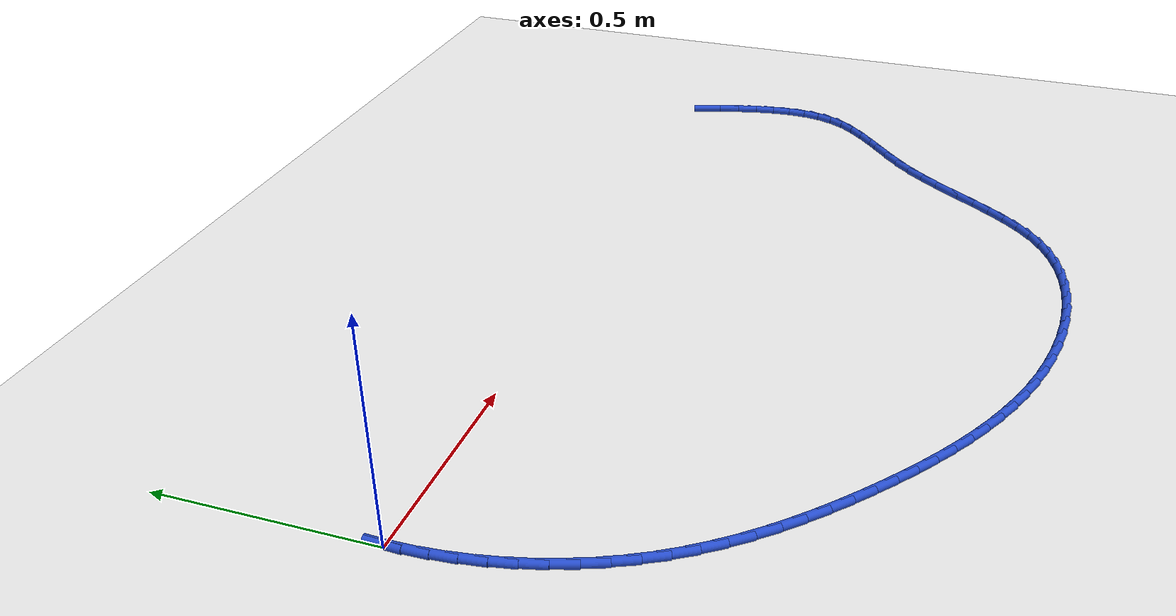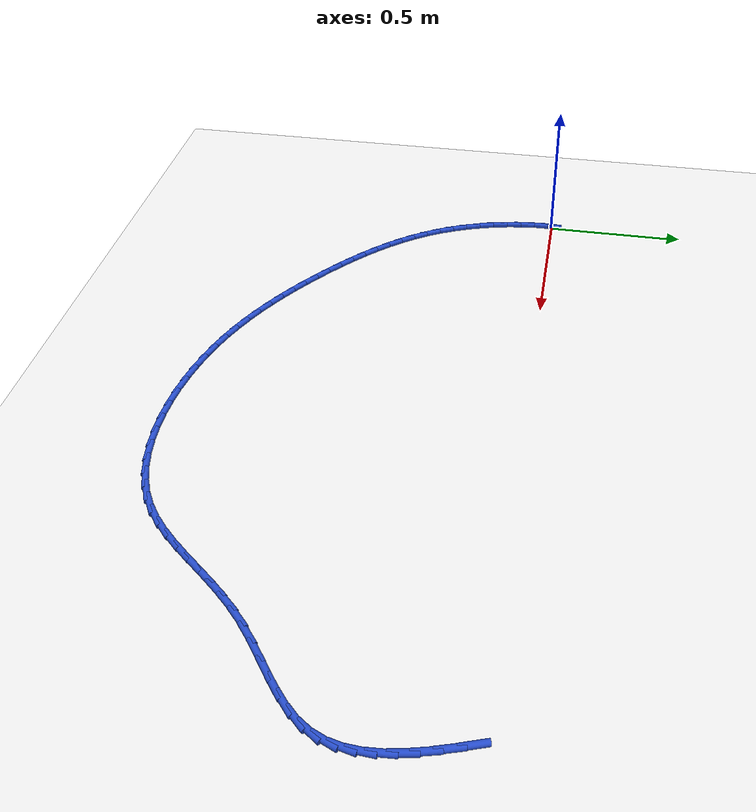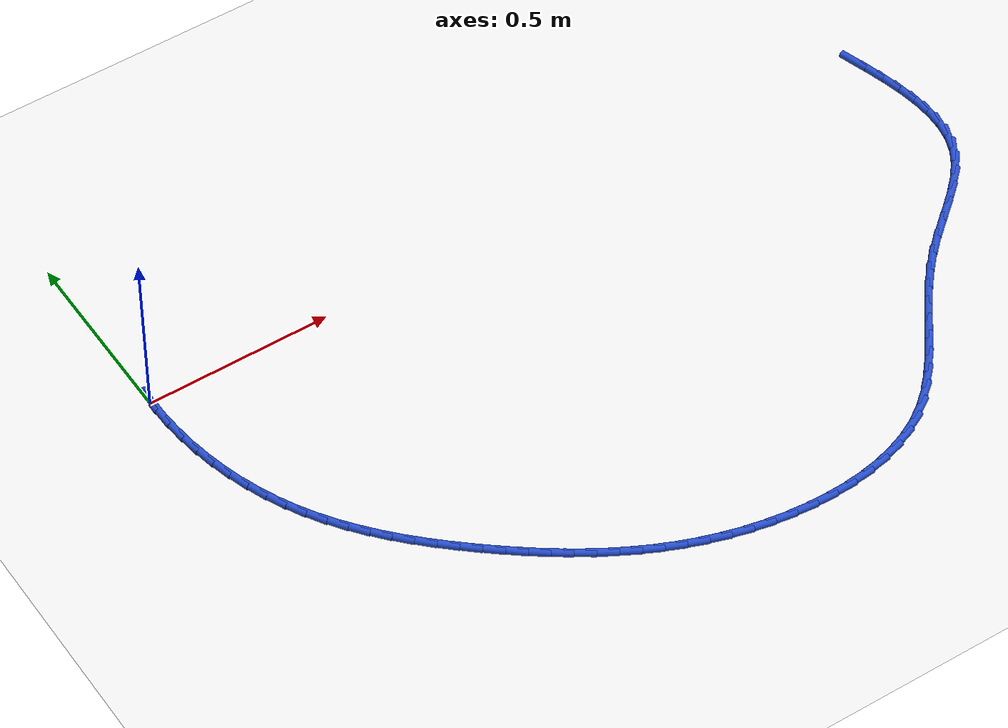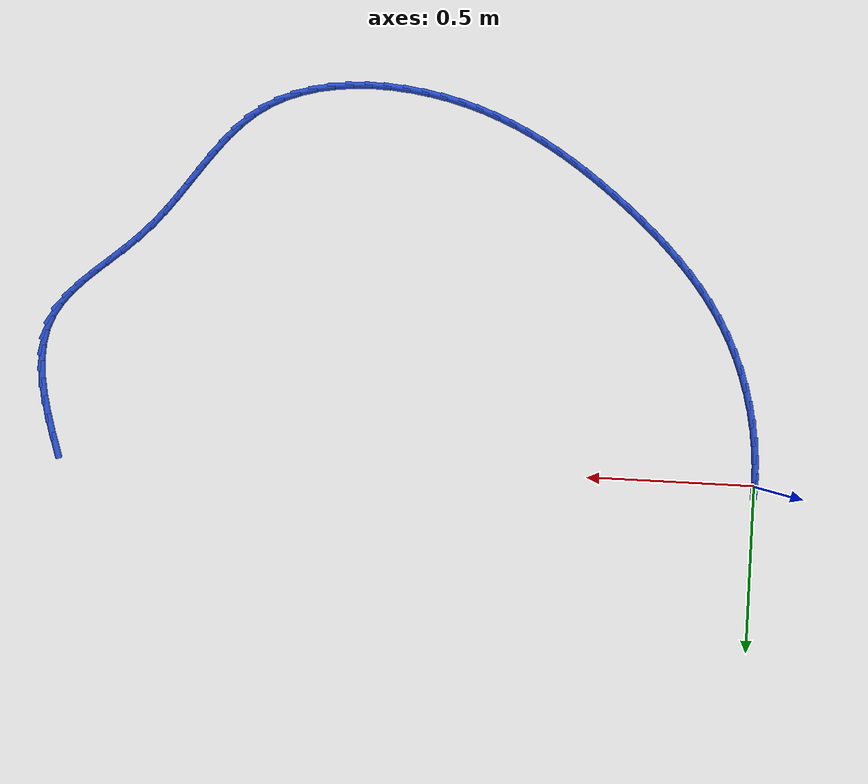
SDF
<sdf version="1.6">
 <world name="default">
  <model name="ground_plane">
   <static>1</static>
   <link name="link">
    <collision name="collision">
     <geometry><plane><normal>0 0 1</normal><size>100 100</size></plane></geometry>
     <surface><friction><ode><mu>100</mu><mu2>50</mu2></ode></friction></surface>
    </collision>
    <visual name="visual">
     <cast_shadows>0</cast_shadows>
     <geometry><plane><normal>0 0 1</normal><size>100 100</size></plane></geometry>
     <material>
      <script><uri>file://media/materials/scripts/gazebo.material</uri><name>Gazebo/WhiteGlow</name></script>
     </material>
    </visual>
   </link>
  </model>
  <model name="line">
   <link name="link_0">
    <pose>-4.163336342344337e-17 2.7755575615628914e-17 0.01 0 1.57 1.5277904556935162</pose>
    <collision name="collision">
     <geometry><cylinder><radius>0.01</radius><length>0.08</length></cylinder></geometry>
    </collision>
    <visual name="visual">
     <material>
      <script><name>Gazebo/Blue</name><uri>file://media/materials/scripts/gazebo.material</uri></script>
     </material>
     <geometry><cylinder><radius>0.01</radius><length>0.08</length></cylinder></geometry>
    </visual>
   </link>
   <link name="link_66">
    <pose>2.0867759038561684 -0.01920757033988546 0.01 0 1.57 -1.2709028024128965</pose>
    <collision name="collision">
     <geometry><cylinder><radius>0.01</radius><length>0.08</length></cylinder></geometry>
    </collision>
    <visual name="visual">
     <material>
      <script><name>Gazebo/Blue</name><uri>file://media/materials/scripts/gazebo.material</uri></script>
     </material>
     <geometry><cylinder><radius>0.01</radius><length>0.08</length></cylinder></geometry>
    </visual>
   </link>
   <link name="link_67">
    <pose>2.103664264737091 -0.07382364728153981 0.01 0 1.57 -1.3021984527120407</pose>
    <collision name="collision">
     <geometry><cylinder><radius>0.01</radius><length>0.08</length></cylinder></geometry>
    </collision>
    <visual name="visual">
     <material>
      <script><name>Gazebo/Blue</name><uri>file://media/materials/scripts/gazebo.material</uri></script>
     </material>
     <geometry><cylinder><radius>0.01</radius><length>0.08</length></cylinder></geometry>
    </visual>
   </link>
   <link name="link_68">
    <pose>2.118341625486802 -0.12714754731527922 0.01 0 1.57 -1.350473126373724</pose>
    <collision name="collision">
     <geometry><cylinder><radius>0.01</radius><length>0.08</length></cylinder></geometry>
    </collision>
    <visual name="visual">
     <material>
      <script><name>Gazebo/Blue</name><uri>file://media/materials/scripts/gazebo.material</uri></script>
     </material>
     <geometry><cylinder><radius>0.01</radius><length>0.08</length></cylinder></geometry>
    </visual>
   </link>
   <link name="link_69">
    <pose>2.1299573043709232 -0.17901279419229243 0.01 0 1.57 -1.4186512946158751</pose>
    <collision name="collision">
     <geometry><cylinder><radius>0.01</radius><length>0.08</length></cylinder></geometry>
    </collision>
    <visual name="visual">
     <material>
      <script><name>Gazebo/Blue</name><uri>file://media/materials/scripts/gazebo.material</uri></script>
     </material>
     <geometry><cylinder><radius>0.01</radius><length>0.08</length></cylinder></geometry>
    </visual>
   </link>
   <link name="link_70">
    <pose>2.1376606196550765 -0.22925291166376788 0.01 0 1.57 -1.5101821195414193</pose>
    <collision name="collision">
     <geometry><cylinder><radius>0.01</radius><length>0.08</length></cylinder></geometry>
    </collision>
    <visual name="visual">
     <material>
      <script><name>Gazebo/Blue</name><uri>file://media/materials/scripts/gazebo.material</uri></script>
     </material>
     <geometry><cylinder><radius>0.01</radius><length>0.08</length></cylinder></geometry>
    </visual>
   </link>
   <link name="link_71">
    <pose>2.140600889604883 -0.27770142348089194 0.01 0 1.57 1.5133540528207283</pose>
    <collision name="collision">
     <geometry><cylinder><radius>0.01</radius><length>0.08</length></cylinder></geometry>
    </collision>
    <visual name="visual">
     <material>
      <script><name>Gazebo/Blue</name><uri>file://media/materials/scripts/gazebo.material</uri></script>
     </material>
     <geometry><cylinder><radius>0.01</radius><length>0.08</length></cylinder></geometry>
    </visual>
   </link>
   <link name="link_72">
    <pose>2.1379274324859656 -0.3241918533948532 0.01 0 1.57 1.367670761896596</pose>
    <collision name="collision">
     <geometry><cylinder><radius>0.01</radius><length>0.08</length></cylinder></geometry>
    </collision>
    <visual name="visual">
     <material>
      <script><name>Gazebo/Blue</name><uri>file://media/materials/scripts/gazebo.material</uri></script>
     </material>
     <geometry><cylinder><radius>0.01</radius><length>0.08</length></cylinder></geometry>
    </visual>
   </link>
   <link name="link_73">
    <pose>2.1287895665639462 -0.3685577251568395 0.01 0 1.57 1.1980376228889342</pose>
    <collision name="collision">
     <geometry><cylinder><radius>0.01</radius><length>0.08</length></cylinder></geometry>
    </collision>
    <visual name="visual">
     <material>
      <script><name>Gazebo/Blue</name><uri>file://media/materials/scripts/gazebo.material</uri></script>
     </material>
     <geometry><cylinder><radius>0.01</radius><length>0.08</length></cylinder></geometry>
    </visual>
   </link>
   <link name="link_74">
    <pose>2.112336610104447 -0.4106325625180387 0.01 0 1.57 1.01678160031741</pose>
    <collision name="collision">
     <geometry><cylinder><radius>0.01</radius><length>0.08</length></cylinder></geometry>
    </collision>
    <visual name="visual">
     <material>
      <script><name>Gazebo/Blue</name><uri>file://media/materials/scripts/gazebo.material</uri></script>
     </material>
     <geometry><cylinder><radius>0.01</radius><length>0.08</length></cylinder></geometry>
    </visual>
   </link>
   <link name="link_75">
    <pose>2.0878078399157527 -0.4502818933815487 0.01 0 1.57 0.86675385108731</pose>
    <collision name="collision">
     <geometry><cylinder><radius>0.01</radius><length>0.08</length></cylinder></geometry>
    </collision>
    <visual name="visual">
     <material>
      <script><name>Gazebo/Blue</name><uri>file://media/materials/scripts/gazebo.material</uri></script>
     </material>
     <geometry><cylinder><radius>0.01</radius><length>0.08</length></cylinder></geometry>
    </visual>
   </link>
   <link name="link_76">
    <pose>2.055877263167608 -0.4878816733105627 0.01 0 1.57 0.7695438041852423</pose>
    <collision name="collision">
     <geometry><cylinder><radius>0.01</radius><length>0.08</length></cylinder></geometry>
    </collision>
    <visual name="visual">
     <material>
      <script><name>Gazebo/Blue</name><uri>file://media/materials/scripts/gazebo.material</uri></script>
     </material>
     <geometry><cylinder><radius>0.01</radius><length>0.08</length></cylinder></geometry>
    </visual>
   </link>
   <link name="link_77">
    <pose>2.0183705359242774 -0.5242175748898664 0.01 0 1.57 0.716042614449902</pose>
    <collision name="collision">
     <geometry><cylinder><radius>0.01</radius><length>0.08</length></cylinder></geometry>
    </collision>
    <visual name="visual">
     <material>
      <script><name>Gazebo/Blue</name><uri>file://media/materials/scripts/gazebo.material</uri></script>
     </material>
     <geometry><cylinder><radius>0.01</radius><length>0.08</length></cylinder></geometry>
    </visual>
   </link>
   <link name="link_78">
    <pose>1.9771457978191536 -0.5600868272396252 0.01 0 1.57 0.698779026054181</pose>
    <collision name="collision">
     <geometry><cylinder><radius>0.01</radius><length>0.08</length></cylinder></geometry>
    </collision>
    <visual name="visual">
     <material>
      <script><name>Gazebo/Blue</name><uri>file://media/materials/scripts/gazebo.material</uri></script>
     </material>
     <geometry><cylinder><radius>0.01</radius><length>0.08</length></cylinder></geometry>
    </visual>
   </link>
   <link name="link_79">
    <pose>1.9340611884856338 -0.5962866594800031 0.01 0 1.57 0.7139070456725983</pose>
    <collision name="collision">
     <geometry><cylinder><radius>0.01</radius><length>0.08</length></cylinder></geometry>
    </collision>
    <visual name="visual">
     <material>
      <script><name>Gazebo/Blue</name><uri>file://media/materials/scripts/gazebo.material</uri></script>
     </material>
     <geometry><cylinder><radius>0.01</radius><length>0.08</length></cylinder></geometry>
    </visual>
   </link>
   <link name="link_80">
    <pose>1.8909748475571095 -0.6336143007311651 0.01 0 1.57 0.7608302301367116</pose>
    <collision name="collision">
     <geometry><cylinder><radius>0.01</radius><length>0.08</length></cylinder></geometry>
    </collision>
    <visual name="visual">
     <material>
      <script><name>Gazebo/Blue</name><uri>file://media/materials/scripts/gazebo.material</uri></script>
     </material>
     <geometry><cylinder><radius>0.01</radius><length>0.08</length></cylinder></geometry>
    </visual>
   </link>
   <link name="link_81">
    <pose>1.8497446426343562 -0.6728668136955697 0.01 0 1.57 0.8298908826613037</pose>
    <collision name="collision">
     <geometry><cylinder><radius>0.01</radius><length>0.08</length></cylinder></geometry>
    </collision>
    <visual name="visual">
     <material>
      <script><name>Gazebo/Blue</name><uri>file://media/materials/scripts/gazebo.material</uri></script>
     </material>
     <geometry><cylinder><radius>0.01</radius><length>0.08</length></cylinder></geometry>
    </visual>
   </link>
   <link name="link_82">
    <pose>1.8116642106911423 -0.7144960893570743 0.01 0 1.57 0.8865725290052987</pose>
    <collision name="collision">
     <geometry><cylinder><radius>0.01</radius><length>0.08</length></cylinder></geometry>
    </collision>
    <visual name="visual">
     <material>
      <script><name>Gazebo/Blue</name><uri>file://media/materials/scripts/gazebo.material</uri></script>
     </material>
     <geometry><cylinder><radius>0.01</radius><length>0.08</length></cylinder></geometry>
    </visual>
   </link>
   <link name="link_83">
    <pose>1.7762753233779145 -0.7578823038094445 0.01 0 1.57 0.9235851876095915</pose>
    <collision name="collision">
     <geometry><cylinder><radius>0.01</radius><length>0.08</length></cylinder></geometry>
    </collision>
    <visual name="visual">
     <material>
      <script><name>Gazebo/Blue</name><uri>file://media/materials/scripts/gazebo.material</uri></script>
     </material>
     <geometry><cylinder><radius>0.01</radius><length>0.08</length></cylinder></geometry>
    </visual>
   </link>
   <link name="link_84">
    <pose>1.7427807516705964 -0.802198247301309 0.01 0 1.57 0.9406298119333418</pose>
    <collision name="collision">
     <geometry><cylinder><radius>0.01</radius><length>0.08</length></cylinder></geometry>
    </collision>
    <visual name="visual">
     <material>
      <script><name>Gazebo/Blue</name><uri>file://media/materials/scripts/gazebo.material</uri></script>
     </material>
     <geometry><cylinder><radius>0.01</radius><length>0.08</length></cylinder></geometry>
    </visual>
   </link>
   <link name="link_85">
    <pose>1.7103832665451095 -0.8466167100812974 0.01 0 1.57 0.9372215781014024</pose>
    <collision name="collision">
     <geometry><cylinder><radius>0.01</radius><length>0.08</length></cylinder></geometry>
    </collision>
    <visual name="visual">
     <material>
      <script><name>Gazebo/Blue</name><uri>file://media/materials/scripts/gazebo.material</uri></script>
     </material>
     <geometry><cylinder><radius>0.01</radius><length>0.08</length></cylinder></geometry>
    </visual>
   </link>
   <link name="link_86">
    <pose>1.678285638977375 -0.8903104823980404 0.01 0 1.57 0.9124498925509925</pose>
    <collision name="collision">
     <geometry><cylinder><radius>0.01</radius><length>0.08</length></cylinder></geometry>
    </collision>
    <visual name="visual">
     <material>
      <script><name>Gazebo/Blue</name><uri>file://media/materials/scripts/gazebo.material</uri></script>
     </material>
     <geometry><cylinder><radius>0.01</radius><length>0.08</length></cylinder></geometry>
    </visual>
   </link>
   <link name="link_87">
    <pose>1.6456906399433162 -0.932452354500166 0.01 0 1.57 0.8649714606008635</pose>
    <collision name="collision">
     <geometry><cylinder><radius>0.01</radius><length>0.08</length></cylinder></geometry>
    </collision>
    <visual name="visual">
     <material>
      <script><name>Gazebo/Blue</name><uri>file://media/materials/scripts/gazebo.material</uri></script>
     </material>
     <geometry><cylinder><radius>0.01</radius><length>0.08</length></cylinder></geometry>
    </visual>
   </link>
   <link name="link_88">
    <pose>1.611801040418854 -0.9722151166363041 0.01 0 1.57 0.7933250755661803</pose>
    <collision name="collision">
     <geometry><cylinder><radius>0.01</radius><length>0.08</length></cylinder></geometry>
    </collision>
    <visual name="visual">
     <material>
      <script><name>Gazebo/Blue</name><uri>file://media/materials/scripts/gazebo.material</uri></script>
     </material>
     <geometry><cylinder><radius>0.01</radius><length>0.08</length></cylinder></geometry>
    </visual>
   </link>
   <link name="link_89">
    <pose>1.5758196113799108 -1.0087715590550848 0.01 0 1.57 0.6967215112438094</pose>
    <collision name="collision">
     <geometry><cylinder><radius>0.01</radius><length>0.08</length></cylinder></geometry>
    </collision>
    <visual name="visual">
     <material>
      <script><name>Gazebo/Blue</name><uri>file://media/materials/scripts/gazebo.material</uri></script>
     </material>
     <geometry><cylinder><radius>0.01</radius><length>0.08</length></cylinder></geometry>
    </visual>
   </link>
   <link name="link_90">
    <pose>1.5369491238024082 -1.0412944720051367 0.01 0 1.57 0.5776126627622719</pose>
    <collision name="collision">
     <geometry><cylinder><radius>0.01</radius><length>0.08</length></cylinder></geometry>
    </collision>
    <visual name="visual">
     <material>
      <script><name>Gazebo/Blue</name><uri>file://media/materials/scripts/gazebo.material</uri></script>
     </material>
     <geometry><cylinder><radius>0.01</radius><length>0.08</length></cylinder></geometry>
    </visual>
   </link>
   <link name="link_91">
    <pose>1.4944438933484887 -1.0689977523878855 0.01 0 1.57 0.45663644868384123</pose>
    <collision name="collision">
     <geometry><cylinder><radius>0.01</radius><length>0.08</length></cylinder></geometry>
    </collision>
    <visual name="visual">
     <material>
      <script><name>Gazebo/Blue</name><uri>file://media/materials/scripts/gazebo.material</uri></script>
     </material>
     <geometry><cylinder><radius>0.01</radius><length>0.08</length></cylinder></geometry>
    </visual>
   </link>
   <link name="link_92">
    <pose>1.4482843661029112 -1.091674382813775 0.01 0 1.57 0.3477849228300264</pose>
    <collision name="collision">
     <geometry><cylinder><radius>0.01</radius><length>0.08</length></cylinder></geometry>
    </collision>
    <visual name="visual">
     <material>
      <script><name>Gazebo/Blue</name><uri>file://media/materials/scripts/gazebo.material</uri></script>
     </material>
     <geometry><cylinder><radius>0.01</radius><length>0.08</length></cylinder></geometry>
    </visual>
   </link>
   <link name="link_93">
    <pose>1.3989877460733875 -1.109545407895205 0.01 0 1.57 0.2507821248381464</pose>
    <collision name="collision">
     <geometry><cylinder><radius>0.01</radius><length>0.08</length></cylinder></geometry>
    </collision>
    <visual name="visual">
     <material>
      <script><name>Gazebo/Blue</name><uri>file://media/materials/scripts/gazebo.material</uri></script>
     </material>
     <geometry><cylinder><radius>0.01</radius><length>0.08</length></cylinder></geometry>
    </visual>
   </link>
   <link name="link_94">
    <pose>1.3470838199751811 -1.1228419068966138 0.01 0 1.57 0.16435811462704636</pose>
    <collision name="collision">
     <geometry><cylinder><radius>0.01</radius><length>0.08</length></cylinder></geometry>
    </collision>
    <visual name="visual">
     <material>
      <script><name>Gazebo/Blue</name><uri>file://media/materials/scripts/gazebo.material</uri></script>
     </material>
     <geometry><cylinder><radius>0.01</radius><length>0.08</length></cylinder></geometry>
    </visual>
   </link>
   <link name="link_95">
    <pose>1.293102374523559 -1.1317949590824383 0.01 0 1.57 0.08695389595332594</pose>
    <collision name="collision">
     <geometry><cylinder><radius>0.01</radius><length>0.08</length></cylinder></geometry>
    </collision>
    <visual name="visual">
     <material>
      <script><name>Gazebo/Blue</name><uri>file://media/materials/scripts/gazebo.material</uri></script>
     </material>
     <geometry><cylinder><radius>0.01</radius><length>0.08</length></cylinder></geometry>
    </visual>
   </link>
   <link name="link_96">
    <pose>1.2375731964337857 -1.136635643717117 0.01 0 1.57 0.016964687853926325</pose>
    <collision name="collision">
     <geometry><cylinder><radius>0.01</radius><length>0.08</length></cylinder></geometry>
    </collision>
    <visual name="visual">
     <material>
      <script><name>Gazebo/Blue</name><uri>file://media/materials/scripts/gazebo.material</uri></script>
     </material>
     <geometry><cylinder><radius>0.01</radius><length>0.08</length></cylinder></geometry>
    </visual>
   </link>
   <link name="link_97">
    <pose>1.1810260724211268 -1.1375950400650874 0.01 0 1.57 -0.04714308074227454</pose>
    <collision name="collision">
     <geometry><cylinder><radius>0.01</radius><length>0.08</length></cylinder></geometry>
    </collision>
    <visual name="visual">
     <material>
      <script><name>Gazebo/Blue</name><uri>file://media/materials/scripts/gazebo.material</uri></script>
     </material>
     <geometry><cylinder><radius>0.01</radius><length>0.08</length></cylinder></geometry>
    </visual>
   </link>
   <link name="link_98">
    <pose>1.123990789200848 -1.1349042273907886 0.01 0 1.57 -0.10679602690967316</pose>
    <collision name="collision">
     <geometry><cylinder><radius>0.01</radius><length>0.08</length></cylinder></geometry>
    </collision>
    <visual name="visual">
     <material>
      <script><name>Gazebo/Blue</name><uri>file://media/materials/scripts/gazebo.material</uri></script>
     </material>
     <geometry><cylinder><radius>0.01</radius><length>0.08</length></cylinder></geometry>
    </visual>
   </link>
   <link name="link_99">
    <pose>1.0669971334882136 -1.1287942849586572 0.01 0 1.57 -0.1633251411922721</pose>
    <collision name="collision">
     <geometry><cylinder><radius>0.01</radius><length>0.08</length></cylinder></geometry>
    </collision>
    <visual name="visual">
     <material>
      <script><name>Gazebo/Blue</name><uri>file://media/materials/scripts/gazebo.material</uri></script>
     </material>
     <geometry><cylinder><radius>0.01</radius><length>0.08</length></cylinder></geometry>
    </visual>
   </link>
   <link name="link_100">
    <pose>1.0105748919984898 -1.1194962920331317 0.01 0 1.57 -0.2180039303082211</pose>
    <collision name="collision">
     <geometry><cylinder><radius>0.01</radius><length>0.08</length></cylinder></geometry>
    </collision>
    <visual name="visual">
     <material>
      <script><name>Gazebo/Blue</name><uri>file://media/materials/scripts/gazebo.material</uri></script>
     </material>
     <geometry><cylinder><radius>0.01</radius><length>0.08</length></cylinder></geometry>
    </visual>
   </link>
   <link name="link_101">
    <pose>0.9552538514469424 -1.1072413278786502 0.01 0 1.57 -0.27193414233660684</pose>
    <collision name="collision">
     <geometry><cylinder><radius>0.01</radius><length>0.08</length></cylinder></geometry>
    </collision>
    <visual name="visual">
     <material>
      <script><name>Gazebo/Blue</name><uri>file://media/materials/scripts/gazebo.material</uri></script>
     </material>
     <geometry><cylinder><radius>0.01</radius><length>0.08</length></cylinder></geometry>
    </visual>
   </link>
   <link name="link_102">
    <pose>0.901501326728736 -1.0922528910108706 0.01 0 1.57 -0.3247429116887661</pose>
    <collision name="collision">
     <geometry><cylinder><radius>0.01</radius><length>0.08</length></cylinder></geometry>
    </collision>
    <visual name="visual">
     <material>
      <script><name>Gazebo/Blue</name><uri>file://media/materials/scripts/gazebo.material</uri></script>
     </material>
     <geometry><cylinder><radius>0.01</radius><length>0.08</length></cylinder></geometry>
    </visual>
   </link>
   <link name="link_103">
    <pose>0.8493787569705694 -1.0747052282631502 0.01 0 1.57 -0.3756405640655998</pose>
    <collision name="collision">
     <geometry><cylinder><radius>0.01</radius><length>0.08</length></cylinder></geometry>
    </collision>
    <visual name="visual">
     <material>
      <script><name>Gazebo/Blue</name><uri>file://media/materials/scripts/gazebo.material</uri></script>
     </material>
     <geometry><cylinder><radius>0.01</radius><length>0.08</length></cylinder></geometry>
    </visual>
   </link>
   <link name="link_104">
    <pose>0.7987854257956052 -1.0547529094347265 0.01 0 1.57 -0.42417417697481785</pose>
    <collision name="collision">
     <geometry><cylinder><radius>0.01</radius><length>0.08</length></cylinder></geometry>
    </collision>
    <visual name="visual">
     <material>
      <script><name>Gazebo/Blue</name><uri>file://media/materials/scripts/gazebo.material</uri></script>
     </material>
     <geometry><cylinder><radius>0.01</radius><length>0.08</length></cylinder></geometry>
    </visual>
   </link>
   <link name="link_105">
    <pose>0.7496201913907372 -1.032550452699555 0.01 0 1.57 -0.46996447260545865</pose>
    <collision name="collision">
     <geometry><cylinder><radius>0.01</radius><length>0.08</length></cylinder></geometry>
    </collision>
    <visual name="visual">
     <material>
      <script><name>Gazebo/Blue</name><uri>file://media/materials/scripts/gazebo.material</uri></script>
     </material>
     <geometry><cylinder><radius>0.01</radius><length>0.08</length></cylinder></geometry>
    </visual>
   </link>
   <link name="link_106">
    <pose>0.7017819119428598 -1.0082523762315896 0.01 0 1.57 -0.5127098951812306</pose>
    <collision name="collision">
     <geometry><cylinder><radius>0.01</radius><length>0.08</length></cylinder></geometry>
    </collision>
    <visual name="visual">
     <material>
      <script><name>Gazebo/Blue</name><uri>file://media/materials/scripts/gazebo.material</uri></script>
     </material>
     <geometry><cylinder><radius>0.01</radius><length>0.08</length></cylinder></geometry>
    </visual>
   </link>
   <link name="link_107">
    <pose>0.6551694456388661 -0.9820131982047844 0.01 0 1.57 -0.5521853484054284</pose>
    <collision name="collision">
     <geometry><cylinder><radius>0.01</radius><length>0.08</length></cylinder></geometry>
    </collision>
    <visual name="visual">
     <material>
      <script><name>Gazebo/Blue</name><uri>file://media/materials/scripts/gazebo.material</uri></script>
     </material>
     <geometry><cylinder><radius>0.01</radius><length>0.08</length></cylinder></geometry>
    </visual>
   </link>
   <link name="link_108">
    <pose>0.6096816506656512 -0.953987436793094 0.01 0 1.57 -0.5882358520431803</pose>
    <collision name="collision">
     <geometry><cylinder><radius>0.01</radius><length>0.08</length></cylinder></geometry>
    </collision>
    <visual name="visual">
     <material>
      <script><name>Gazebo/Blue</name><uri>file://media/materials/scripts/gazebo.material</uri></script>
     </material>
     <geometry><cylinder><radius>0.01</radius><length>0.08</length></cylinder></geometry>
    </visual>
   </link>
   <link name="link_109">
    <pose>0.5652173852101089 -0.9243296101704728 0.01 0 1.57 -0.6207668418030771</pose>
    <collision name="collision">
     <geometry><cylinder><radius>0.01</radius><length>0.08</length></cylinder></geometry>
    </collision>
    <visual name="visual">
     <material>
      <script><name>Gazebo/Blue</name><uri>file://media/materials/scripts/gazebo.material</uri></script>
     </material>
     <geometry><cylinder><radius>0.01</radius><length>0.08</length></cylinder></geometry>
    </visual>
   </link>
   <link name="link_110">
    <pose>0.5216755074591322 -0.8931942365108747 0.01 0 1.57 -0.6497327757841156</pose>
    <collision name="collision">
     <geometry><cylinder><radius>0.01</radius><length>0.08</length></cylinder></geometry>
    </collision>
    <visual name="visual">
     <material>
      <script><name>Gazebo/Blue</name><uri>file://media/materials/scripts/gazebo.material</uri></script>
     </material>
     <geometry><cylinder><radius>0.01</radius><length>0.08</length></cylinder></geometry>
    </visual>
   </link>
   <link name="link_111">
    <pose>0.4789548755996164 -0.8607358339882547 0.01 0 1.57 -0.6751254152870205</pose>
    <collision name="collision">
     <geometry><cylinder><radius>0.01</radius><length>0.08</length></cylinder></geometry>
    </collision>
    <visual name="visual">
     <material>
      <script><name>Gazebo/Blue</name><uri>file://media/materials/scripts/gazebo.material</uri></script>
     </material>
     <geometry><cylinder><radius>0.01</radius><length>0.08</length></cylinder></geometry>
    </visual>
   </link>
   <link name="link_112">
    <pose>0.43695434781845505 -0.8271089207765671 0.01 0 1.57 -0.6978535655759532</pose>
    <collision name="collision">
     <geometry><cylinder><radius>0.01</radius><length>0.08</length></cylinder></geometry>
    </collision>
    <visual name="visual">
     <material>
      <script><name>Gazebo/Blue</name><uri>file://media/materials/scripts/gazebo.material</uri></script>
     </material>
     <geometry><cylinder><radius>0.01</radius><length>0.08</length></cylinder></geometry>
    </visual>
   </link>
   <link name="link_113">
    <pose>0.3956130564171464 -0.7924390482435725 0.01 0 1.57 -0.7231068163051074</pose>
    <collision name="collision">
     <geometry><cylinder><radius>0.01</radius><length>0.08</length></cylinder></geometry>
    </collision>
    <visual name="visual">
     <material>
      <script><name>Gazebo/Blue</name><uri>file://media/materials/scripts/gazebo.material</uri></script>
     </material>
     <geometry><cylinder><radius>0.01</radius><length>0.08</length></cylinder></geometry>
    </visual>
   </link>
   <link name="link_114">
    <pose>0.3551021163127918 -0.7566849162810299 0.01 0 1.57 -0.7528391821483933</pose>
    <collision name="collision">
     <geometry><cylinder><radius>0.01</radius><length>0.08</length></cylinder></geometry>
    </collision>
    <visual name="visual">
     <material>
      <script><name>Gazebo/Blue</name><uri>file://media/materials/scripts/gazebo.material</uri></script>
     </material>
     <geometry><cylinder><radius>0.01</radius><length>0.08</length></cylinder></geometry>
    </visual>
   </link>
   <link name="link_115">
    <pose>0.3156755323170917 -0.7197456069458708 0.01 0 1.57 -0.7871981011636016</pose>
    <collision name="collision">
     <geometry><cylinder><radius>0.01</radius><length>0.08</length></cylinder></geometry>
    </collision>
    <visual name="visual">
     <material>
      <script><name>Gazebo/Blue</name><uri>file://media/materials/scripts/gazebo.material</uri></script>
     </material>
     <geometry><cylinder><radius>0.01</radius><length>0.08</length></cylinder></geometry>
    </visual>
   </link>
   <link name="link_116">
    <pose>0.2775874129508949 -0.6815201277031282 0.01 0 1.57 -0.8263313984691429</pose>
    <collision name="collision">
     <geometry><cylinder><radius>0.01</radius><length>0.08</length></cylinder></geometry>
    </collision>
    <visual name="visual">
     <material>
      <script><name>Gazebo/Blue</name><uri>file://media/materials/scripts/gazebo.material</uri></script>
     </material>
     <geometry><cylinder><radius>0.01</radius><length>0.08</length></cylinder></geometry>
    </visual>
   </link>
   <link name="link_117">
    <pose>0.24109186673504826 -0.6419074860178335 0.01 0 1.57 -0.870367486657677</pose>
    <collision name="collision">
     <geometry><cylinder><radius>0.01</radius><length>0.08</length></cylinder></geometry>
    </collision>
    <visual name="visual">
     <material>
      <script><name>Gazebo/Blue</name><uri>file://media/materials/scripts/gazebo.material</uri></script>
     </material>
     <geometry><cylinder><radius>0.01</radius><length>0.08</length></cylinder></geometry>
    </visual>
   </link>
   <link name="link_118">
    <pose>0.20644300219039888 -0.6008066893550181 0.01 0 1.57 -0.9193876583253914</pose>
    <collision name="collision">
     <geometry><cylinder><radius>0.01</radius><length>0.08</length></cylinder></geometry>
    </collision>
    <visual name="visual">
     <material>
      <script><name>Gazebo/Blue</name><uri>file://media/materials/scripts/gazebo.material</uri></script>
     </material>
     <geometry><cylinder><radius>0.01</radius><length>0.08</length></cylinder></geometry>
    </visual>
   </link>
   <link name="link_119">
    <pose>0.17389492783779512 -0.5581167451797147 0.01 0 1.57 -0.9733929233526675</pose>
    <collision name="collision">
     <geometry><cylinder><radius>0.01</radius><length>0.08</length></cylinder></geometry>
    </collision>
    <visual name="visual">
     <material>
      <script><name>Gazebo/Blue</name><uri>file://media/materials/scripts/gazebo.material</uri></script>
     </material>
     <geometry><cylinder><radius>0.01</radius><length>0.08</length></cylinder></geometry>
    </visual>
   </link>
   <link name="link_120">
    <pose>0.14370175219808418 -0.5137366609569549 0.01 0 1.57 -1.0322671053622225</pose>
    <collision name="collision">
     <geometry><cylinder><radius>0.01</radius><length>0.08</length></cylinder></geometry>
    </collision>
    <visual name="visual">
     <material>
      <script><name>Gazebo/Blue</name><uri>file://media/materials/scripts/gazebo.material</uri></script>
     </material>
     <geometry><cylinder><radius>0.01</radius><length>0.08</length></cylinder></geometry>
    </visual>
   </link>
   <link name="link_121">
    <pose>0.11611758379211339 -0.4675654441517703 0.01 0 1.57 -1.0947751542546422</pose>
    <collision name="collision">
     <geometry><cylinder><radius>0.01</radius><length>0.08</length></cylinder></geometry>
    </collision>
    <visual name="visual">
     <material>
      <script><name>Gazebo/Blue</name><uri>file://media/materials/scripts/gazebo.material</uri></script>
     </material>
     <geometry><cylinder><radius>0.01</radius><length>0.08</length></cylinder></geometry>
    </visual>
   </link>
   <link name="link_122">
    <pose>0.09136494506555044 -0.4195546505294254 0.01 0 1.57 -1.1561981999533635</pose>
    <collision name="collision">
     <geometry><cylinder><radius>0.01</radius><length>0.08</length></cylinder></geometry>
    </collision>
    <visual name="visual">
     <material>
      <script><name>Gazebo/Blue</name><uri>file://media/materials/scripts/gazebo.material</uri></script>
     </material>
     <geometry><cylinder><radius>0.01</radius><length>0.08</length></cylinder></geometry>
    </visual>
   </link>
   <link name="link_123">
    <pose>0.06951491598763153 -0.3699077837364601 0.01 0 1.57 -1.2155511895550604</pose>
    <collision name="collision">
     <geometry><cylinder><radius>0.01</radius><length>0.08</length></cylinder></geometry>
    </collision>
    <visual name="visual">
     <material>
      <script><name>Gazebo/Blue</name><uri>file://media/materials/scripts/gazebo.material</uri></script>
     </material>
     <geometry><cylinder><radius>0.01</radius><length>0.08</length></cylinder></geometry>
    </visual>
   </link>
   <link name="link_124">
    <pose>0.050593242797375385 -0.31890376706090773 0.01 0 1.57 -1.2733101437615013</pose>
    <collision name="collision">
     <geometry><cylinder><radius>0.01</radius><length>0.08</length></cylinder></geometry>
    </collision>
    <visual name="visual">
     <material>
      <script><name>Gazebo/Blue</name><uri>file://media/materials/scripts/gazebo.material</uri></script>
     </material>
     <geometry><cylinder><radius>0.01</radius><length>0.08</length></cylinder></geometry>
    </visual>
   </link>
   <link name="link_125">
    <pose>0.034625663400196814 -0.2668215376550309 0.01 0 1.57 -1.3299622151184123</pose>
    <collision name="collision">
     <geometry><cylinder><radius>0.01</radius><length>0.08</length></cylinder></geometry>
    </collision>
    <visual name="visual">
     <material>
      <script><name>Gazebo/Blue</name><uri>file://media/materials/scripts/gazebo.material</uri></script>
     </material>
     <geometry><cylinder><radius>0.01</radius><length>0.08</length></cylinder></geometry>
    </visual>
   </link>
   <link name="link_126">
    <pose>0.021637915701510895 -0.21394003267109235 0.01 0 1.57 -1.386003209411587</pose>
    <collision name="collision">
     <geometry><cylinder><radius>0.01</radius><length>0.08</length></cylinder></geometry>
    </collision>
    <visual name="visual">
     <material>
      <script><name>Gazebo/Blue</name><uri>file://media/materials/scripts/gazebo.material</uri></script>
     </material>
     <geometry><cylinder><radius>0.01</radius><length>0.08</length></cylinder></geometry>
    </visual>
   </link>
   <link name="link_127">
    <pose>0.01165573760673318 -0.16053818926135704 0.01 0 1.57 -1.4419384177535792</pose>
    <collision name="collision">
     <geometry><cylinder><radius>0.01</radius><length>0.08</length></cylinder></geometry>
    </collision>
    <visual name="visual">
     <material>
      <script><name>Gazebo/Blue</name><uri>file://media/materials/scripts/gazebo.material</uri></script>
     </material>
     <geometry><cylinder><radius>0.01</radius><length>0.08</length></cylinder></geometry>
    </visual>
   </link>
   <link name="link_128">
    <pose>0.004704867021278643 -0.10689494457808751 0.01 0 1.57 -1.4982854225353357</pose>
    <collision name="collision">
     <geometry><cylinder><radius>0.01</radius><length>0.08</length></cylinder></geometry>
    </collision>
    <visual name="visual">
     <material>
      <script><name>Gazebo/Blue</name><uri>file://media/materials/scripts/gazebo.material</uri></script>
     </material>
     <geometry><cylinder><radius>0.01</radius><length>0.08</length></cylinder></geometry>
    </visual>
   </link>
   <link name="link_129">
    <pose>0.0008110418505624991 -0.0532892357735473 0.01 0 1.57 -1.555577883048908</pose>
    <collision name="collision">
     <geometry><cylinder><radius>0.01</radius><length>0.08</length></cylinder></geometry>
    </collision>
    <visual name="visual">
     <material>
      <script><name>Gazebo/Blue</name><uri>file://media/materials/scripts/gazebo.material</uri></script>
     </material>
     <geometry><cylinder><radius>0.01</radius><length>0.08</length></cylinder></geometry>
    </visual>
   </link>
   <link name="link_130">
    <pose>-6.245004513516506e-17 1.5265566588595902e-16 0.01 0 1.57 1.5272233812763316</pose>
    <collision name="collision">
     <geometry><cylinder><radius>0.01</radius><length>0.08</length></cylinder></geometry>
    </collision>
    <visual name="visual">
     <material>
      <script><name>Gazebo/Blue</name><uri>file://media/materials/scripts/gazebo.material</uri></script>
     </material>
     <geometry><cylinder><radius>0.01</radius><length>0.08</length></cylinder></geometry>
    </visual>
   </link>
  </model>
 </world>
</sdf>
